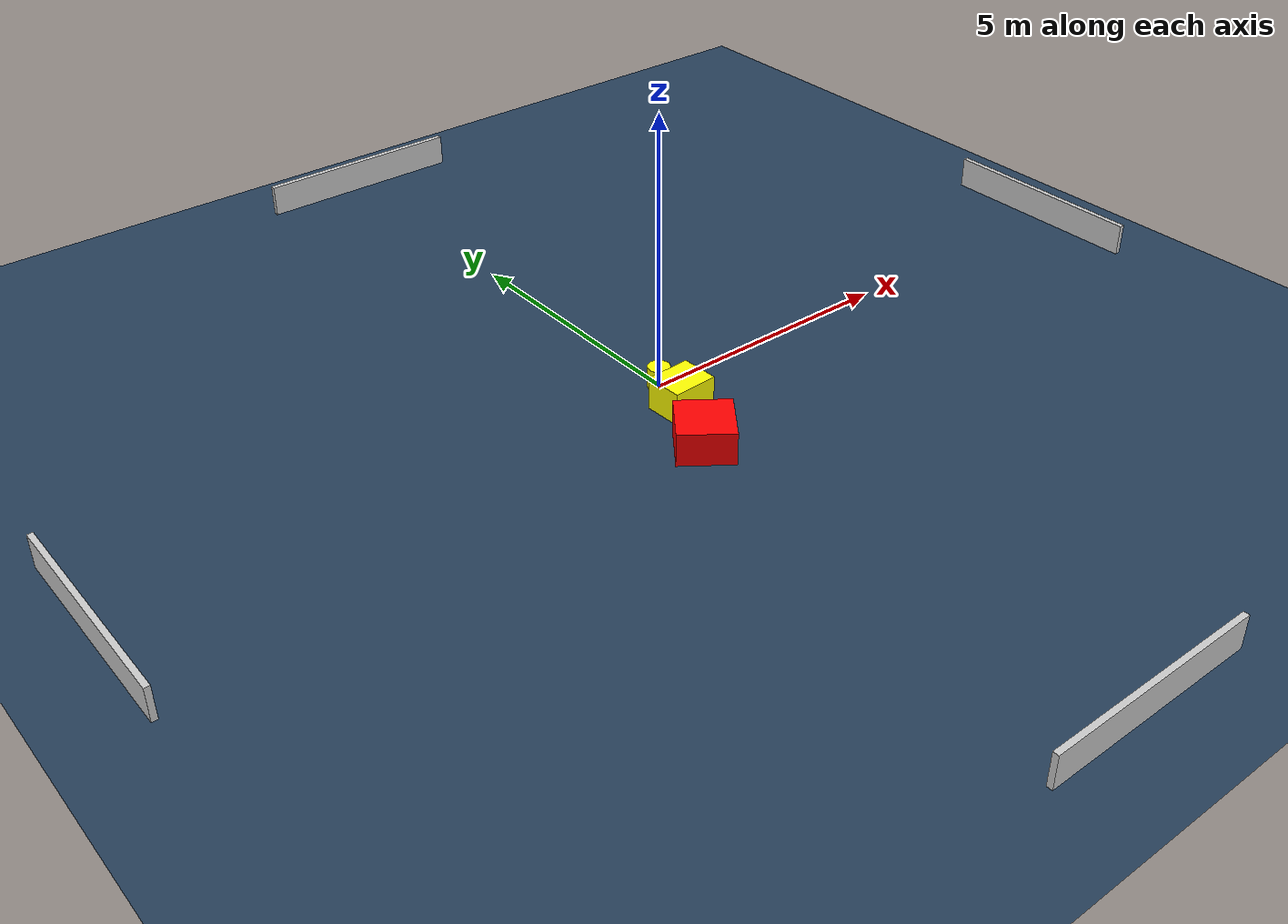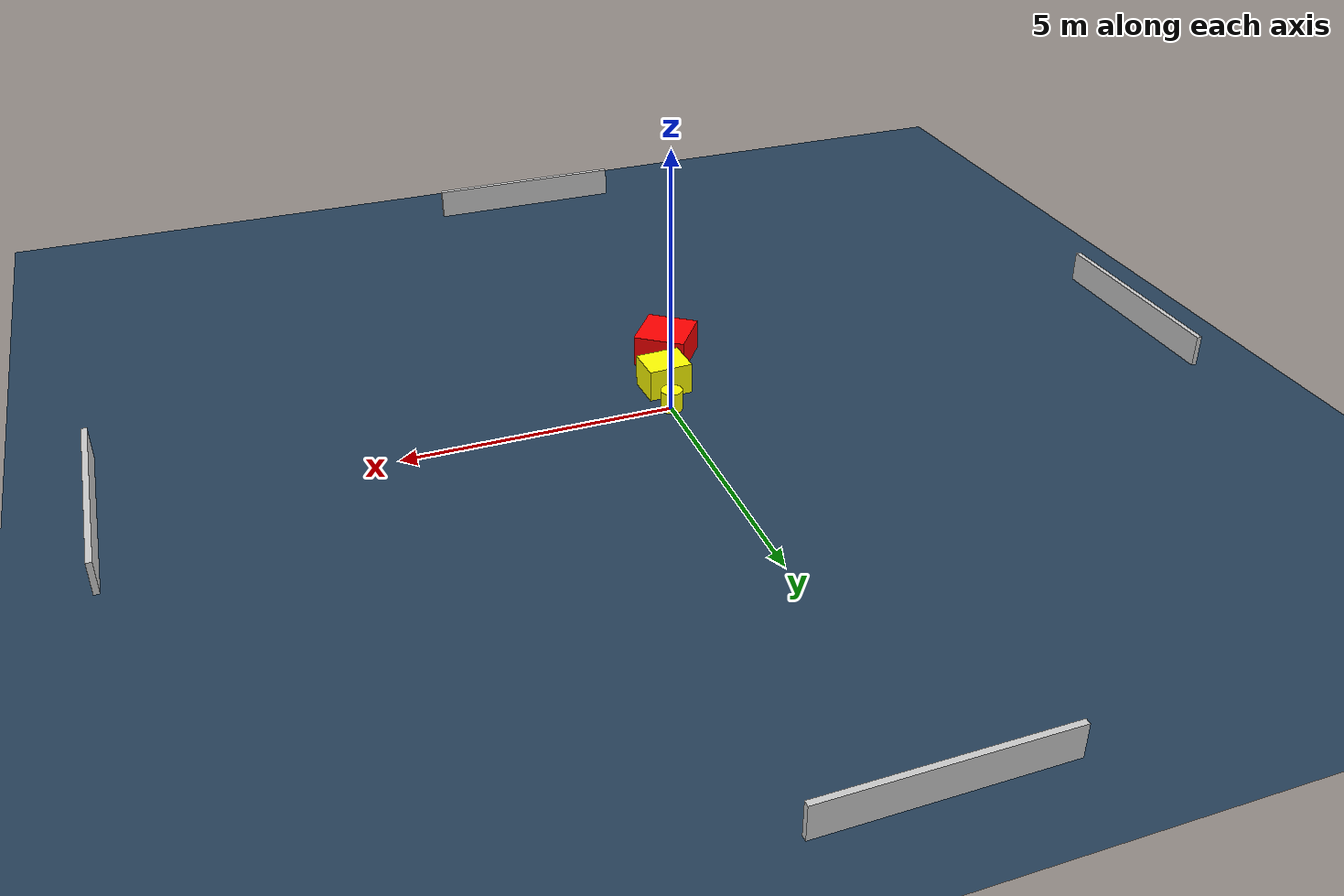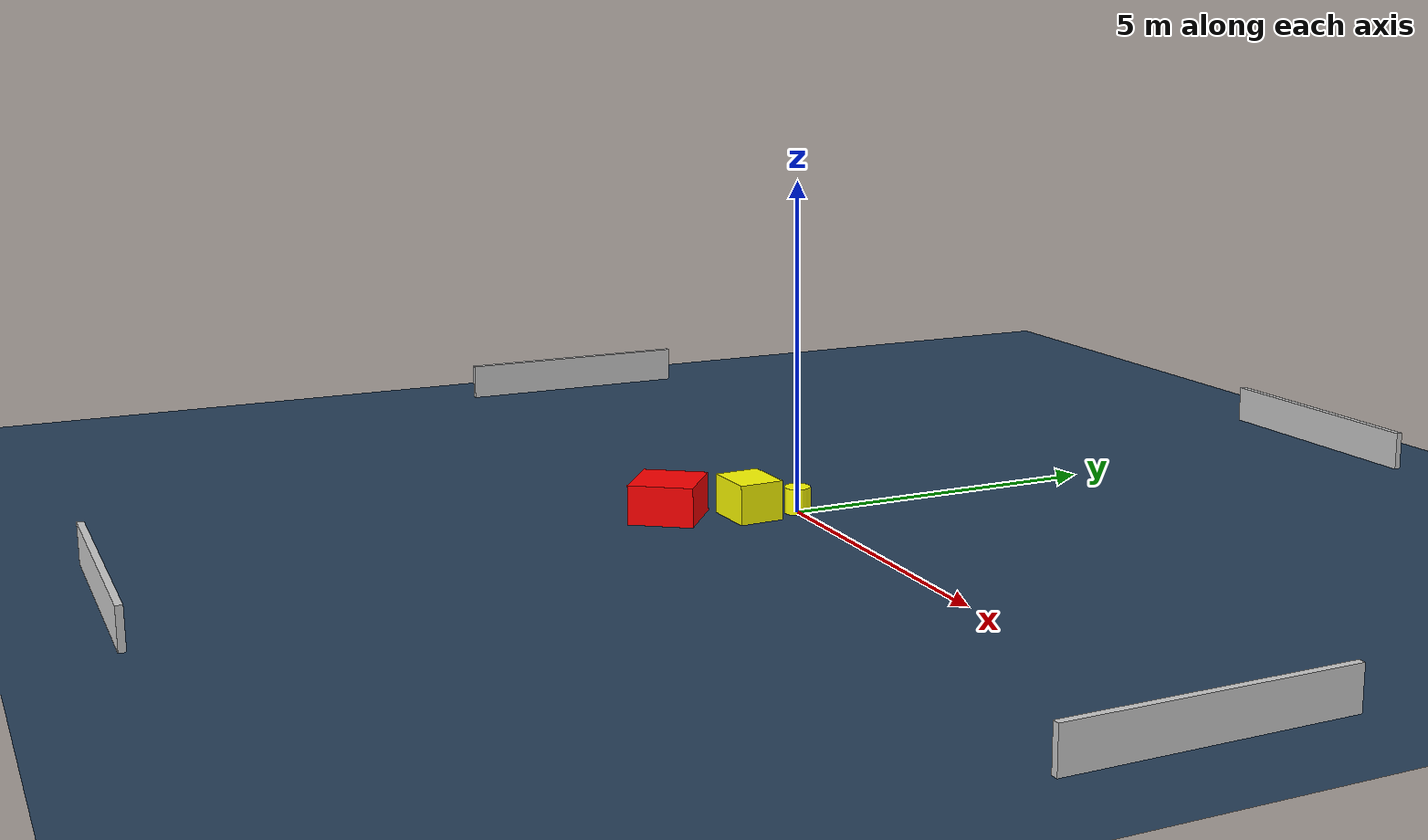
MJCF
<?xml version="1.0" ?>
<mujoco model="generated_environment">
  <option timestep="0.01" integrator="RK4" cone="elliptic"/>
  <default>
    <geom density="1"/>
  </default>
  <asset>
    <texture builtin="gradient" height="3072" name="skybox" rgb1="0.3 0.5 0.7" rgb2="0 0 0" type="skybox" width="512"/>
    <texture builtin="checker" height="300" name="groundplane" rgb1="0.2 0.3 0.4" rgb2="0.1 0.2 0.3" type="2d" width="300"/>
    <material name="groundplane" reflectance="0.2" texrepeat="5 5" texture="groundplane"/>
  </asset>
  <worldbody>
    <light dir="0 0 -1" directional="true" pos="0 0 1.5"/>
    <geom condim="3" friction="0.5 0.005 0.001" material="groundplane" name="floor" pos="0 0 0" size="0 0 0.05" type="plane"/>
    <body name="walls">
      <geom name="wall_1" condim="4" pos="-10.0 0.0 0.3" rgba="0.800000011920929 0.800000011920929 0.800000011920929 1.0" size="0.05 2.0 0.3" type="box"/>
      <geom name="wall_2" condim="4" pos="10.0 0.0 0.3" rgba="0.800000011920929 0.800000011920929 0.800000011920929 1.0" size="0.05 2.0 0.3" type="box"/>
      <geom name="wall_3" condim="4" pos="0.0 -10.0 0.3" rgba="0.800000011920929 0.800000011920929 0.800000011920929 1.0" size="2.0 0.05 0.3" type="box"/>
      <geom name="wall_4" condim="4" pos="0.0 10.0 0.3" rgba="0.800000011920929 0.800000011920929 0.800000011920929 1.0" size="2.0 0.05 0.3" type="box"/>
    </body>
    <body name="robot">
      <joint name="joint_x" type="slide" pos="0 0 0" axis="1 0 0"/>
      <joint name="joint_y" type="slide" pos="0 0 0" axis="0 1 0"/>
      <geom name="robot" type="cylinder" pos="0.0 0.0 0.2" size="0.2 0.2 0.0" mass="5.0" friction="1.0 0.005 0.0001" condim="4" rgba="1.0 1.0 0.0 1.0"/>
    </body>
    <body name="obstacle_1_movable">
      <geom name="obstacle_1_movable" condim="4" pos="-0.12545766740935918 -0.743297763625833 0.3" euler="0 0 2.673044243851308" friction="0.0 0.005 0.001" rgba="1.0 1.0 0.0 1.0" size="0.4151973431307435 0.34536349694701973 0.3" type="box" mass="0.1"/>
      <joint type="free"/>
    </body>
    <body name="obstacle_2_static">
      <geom name="obstacle_2_static" condim="4" pos="-0.5777398964503648 -1.8641947064843067 0.3" euler="0 0 323.3941830288415" friction="0.0 0.005 0.001" rgba="1.0 0.0 0.0 1.0" size="0.49216751210651544 0.4960228517751427 0.3" type="box"/>
    </body>
  </worldbody>
  <actuator>
    <motor name="actuator_x" joint="joint_x" gear="1" ctrlrange="-1 1"/>
    <motor name="actuator_y" joint="joint_y" gear="1" ctrlrange="-1 1"/>
  </actuator>
</mujoco>
